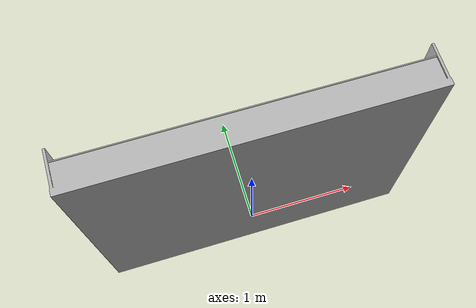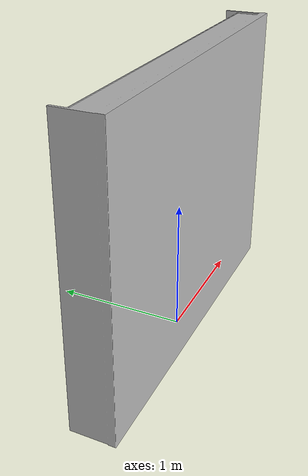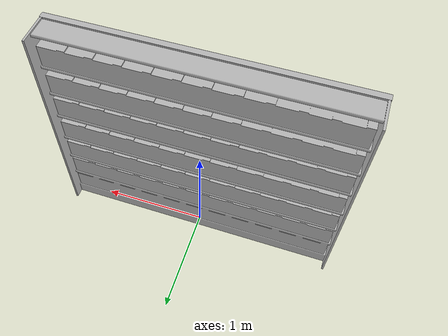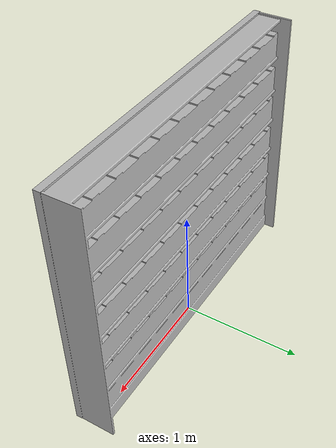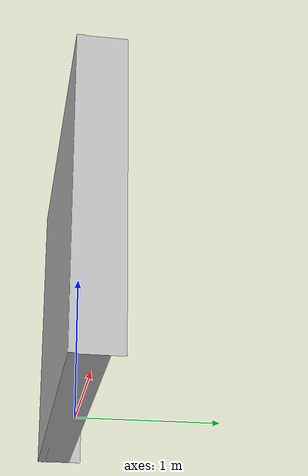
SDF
<?xml version="1.0" ?>
<sdf version="1.6">
  <model name="aws_robomaker_retail_BookshelfB_01">
    <link name="link">
      <inertial>
        <mass>50</mass>
        <inertia>
          <ixx>19.87420</ixx>
          <ixy>0</ixy>
          <ixz>0</ixz>
          <iyy>49.12631347041</iyy>
          <iyz>0</iyz>
          <izz>30.223050</izz>
        </inertia>
      </inertial>
      <collision name="collision">
        <geometry>
          <mesh>
            <uri>file://models/aws_robomaker_retail_BookshelfB_01/meshes/aws_BookshelfB_01_collision.DAE</uri>
            <scale>1 1 1</scale>
          </mesh>
        </geometry>
      </collision>
      <visual name="visual">
	    <geometry>
          <mesh>
            <uri>file://models/aws_robomaker_retail_BookshelfB_01/meshes/aws_BookshelfB_01_visual.DAE</uri>
          </mesh>
        </geometry>
        <meta>
          <layer>1</layer>
        </meta>
      </visual>
    </link>
  <static>1</static>
  </model>
</sdf>
